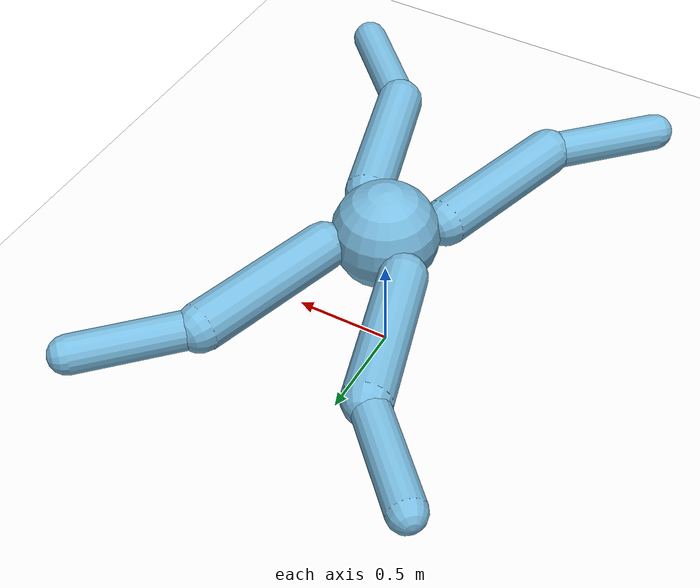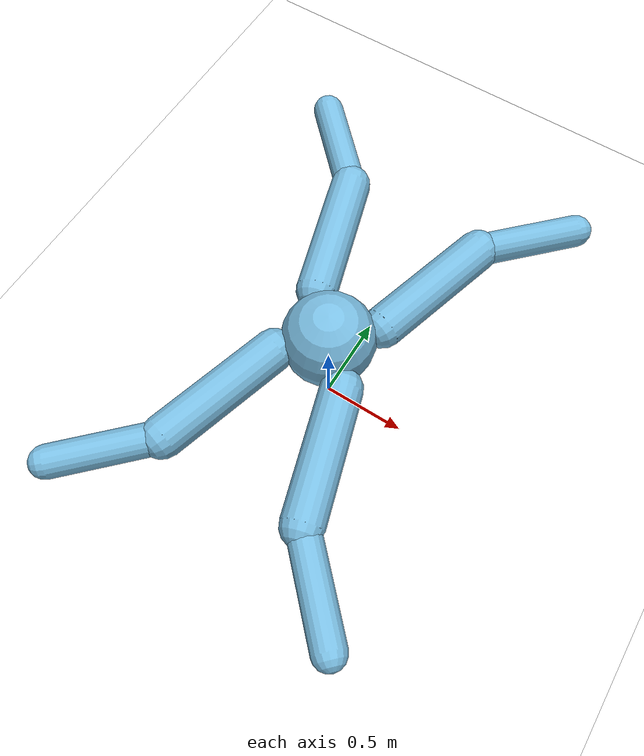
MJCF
<mujoco model="ant">
  <compiler angle="degree" coordinate="local" inertiafromgeom="true"/>
  <option integrator="RK4" timestep="0.01"/>
  <custom>
    <numeric data="0.0 0.0 0.8711102550927979 1.0 0.0 0.0 0.0 0.0 1.0 0.0 -1.0 0.0 -1.0 0.0 1.0" name="init_qpos"/>
  </custom>
  <default>
    <joint armature="1" damping="1" limited="true"/>
    <geom conaffinity="0" condim="3" density="5.0" friction="1 0.5 0.5" margin="0.01" rgba="0.8 0.6 0.4 1"/>
  </default>
  <asset>
    <texture builtin="gradient" height="100" rgb1="1 1 1" rgb2="0.9 0.9 0.9" type="skybox" width="100"/>
    <texture builtin="flat" height="1278" mark="cross" markrgb="1 1 1" name="texgeom" random="0.01" rgb1="0.8 0.6 0.4" rgb2="0.8 0.6 0.4" type="cube" width="127"/>
    <texture builtin="checker" height="100" name="texplane" rgb1="1 1 1" rgb2="0.7 0.7 0.7" type="2d" width="100"/>
    <material name="MatPlane" reflectance="0.5" shininess="1" specular="1" texrepeat="60 60" texture="texplane"/>
    <material name="geom" texture="texgeom" texuniform="true"/>
  </asset>
  <worldbody>
    <light cutoff="100" diffuse="1 1 1" dir="-0 0 -1.3" directional="true" exponent="1" pos="0 0 1.3" specular=".1 .1 .1"/>
    <geom conaffinity="1" condim="3" material="MatPlane" name="floor" pos="0 0 0" rgba="0.95 0.95 0.95 1" size="40 40 40" type="plane"/>
    <body name="torso" pos="0 0 0.7298275602568677">
      <camera name="track" mode="trackcom" pos="0 -3 0.3" xyaxes="1 0 0 0 0 1"/>
      <geom name="torso_geom" pos="0 0 0" size="0.2599999997764826" type="sphere" rgba="0.47 0.73 0.87 1.0"/>
      <joint armature="0" damping="0" limited="false" margin="0.01" name="root" pos="0 0 0" type="free"/>
      <body name="front_left_leg" pos="0 0 0">
        <geom fromto="0.0 0.0 0.0 0.2099999997764826 0.2099999997764826 0.0" name="aux_1_geom" size="0.08999999977648258" type="capsule" rgba="0.47 0.73 0.87 1.0"/>
        <body name="aux_1" pos="0.2099999997764826 0.2099999997764826 0">
          <joint axis="0 0 1" name="hip_1" pos="0.0 0.0 0.0" range="-40 40" type="hinge"/>
          <geom fromto="0.0 0.0 0.0 0.2099999997764826 0.7 0.0" name="left_leg_geom" size="0.11612914308905602" type="capsule" rgba="0.47 0.73 0.87 1.0" />
          <body pos="0.2099999997764826 0.7 0" >
            <joint axis="-1 1 0" name="ankle_1" pos="0.0 0.0 0.0" range="30 100" type="hinge"/>
            <geom fromto="0.0 0.0 0.0 0.4099999997764826 0.4099999997764826 0.0" name="left_ankle_geom" size="0.08999999977648258" type="capsule" rgba="0.47 0.73 0.87 1.0" />
          </body>
        </body>
      </body>
      <body name="front_right_leg" pos="0 0 0">
        <geom fromto="0.0 0.0 0.0 -0.2099999997764826 0.2099999997764826 0.0" name="aux_2_geom" size="0.08999999977648258" type="capsule" rgba="0.47 0.73 0.87 1.0" />
        <body name="aux_2" pos="-0.2099999997764826 0.2099999997764826 0">
          <joint axis="0 0 1" name="hip_2" pos="0.0 0.0 0.0" range="-40 40" type="hinge"/>
          <geom fromto="0.0 0.0 0.0 -0.2099999997764826 0.7 0.0" name="right_leg_geom" size="0.11612914308905602" type="capsule" rgba="0.47 0.73 0.87 1.0" />
          <body pos="-0.2099999997764826 0.7 0" >
            <joint axis="1 1 0" name="ankle_2" pos="0.0 0.0 0.0" range="-100 -30" type="hinge"/>
            <geom fromto="0.0 0.0 0.0 -0.4099999997764826 0.4099999997764826 0.0" name="right_ankle_geom" size="0.08999999977648258" type="capsule" rgba="0.47 0.73 0.87 1.0" />
          </body>
        </body>
      </body>
      <body name="left_back_leg" pos="0 0 0">
        <geom fromto="0.0 0.0 0.0 -0.2099999997764826 -0.2099999997764826 0.0" name="aux_3_geom" size="0.08999999977648258" type="capsule" rgba="0.47 0.73 0.87 1.0" />
        <body name="aux_3" pos="-0.2099999997764826 -0.2099999997764826 0">
          <joint axis="0 0 1" name="hip_3" pos="0.0 0.0 0.0" range="-40 40" type="hinge"/>
          <geom fromto="0.0 0.0 0.0 -0.2099999997764826 -0.7 0.0" name="back_leg_geom" size="0.11612914308905602" type="capsule" rgba="0.47 0.73 0.87 1.0" />
          <body pos="-0.2099999997764826 -0.7 0" >
            <joint axis="-1 1 0" name="ankle_3" pos="0.0 0.0 0.0" range="-100 -30" type="hinge"/>
            <geom fromto="0.0 0.0 0.0 -0.4099999997764826 -0.4099999997764826 0.0" name="third_ankle_geom" size="0.08999999977648258" type="capsule" rgba="0.47 0.73 0.87 1.0" />
          </body>
        </body>
      </body>
      <body name="right_back_leg" pos="0 0 0">
        <geom fromto="0.0 0.0 0.0 0.2099999997764826 -0.2099999997764826 0.0" name="aux_4_geom" size="0.08999999977648258" type="capsule" rgba="0.47 0.73 0.87 1.0" />
        <body name="aux_4" pos=" 0.2099999997764826 -0.2099999997764826 0">
          <joint axis="0 0 1" name="hip_4" pos="0.0 0.0 0.0" range="-40 40" type="hinge"/>
          <geom fromto="0.0 0.0 0.0 0.2099999997764826 -0.7 0.0" name="rightback_leg_geom" size="0.11612914308905602" type="capsule" rgba="0.47 0.73 0.87 1.0" />
          <body pos="0.2099999997764826 -0.7 0" >
            <joint axis="1 1 0" name="ankle_4" pos="0.0 0.0 0.0" range="30 100" type="hinge"/>
            <geom fromto="0.0 0.0 0.0 0.4099999997764826 -0.4099999997764826 0.0" name="fourth_ankle_geom" size="0.08999999977648258" type="capsule" rgba="0.47 0.73 0.87 1.0" />
          </body>
        </body>
      </body>
    </body>
  </worldbody>

  <actuator>
    <motor ctrllimited="true" ctrlrange="-1.0 1.0" joint="hip_4" gear="150"/>
    <motor ctrllimited="true" ctrlrange="-1.0 1.0" joint="ankle_4" gear="150"/>
    <motor ctrllimited="true" ctrlrange="-1.0 1.0" joint="hip_1" gear="150"/>
    <motor ctrllimited="true" ctrlrange="-1.0 1.0" joint="ankle_1" gear="150"/>
    <motor ctrllimited="true" ctrlrange="-1.0 1.0" joint="hip_2" gear="150"/>
    <motor ctrllimited="true" ctrlrange="-1.0 1.0" joint="ankle_2" gear="150"/>
    <motor ctrllimited="true" ctrlrange="-1.0 1.0" joint="hip_3" gear="150"/>
    <motor ctrllimited="true" ctrlrange="-1.0 1.0" joint="ankle_3" gear="150"/>
  </actuator>
</mujoco>
